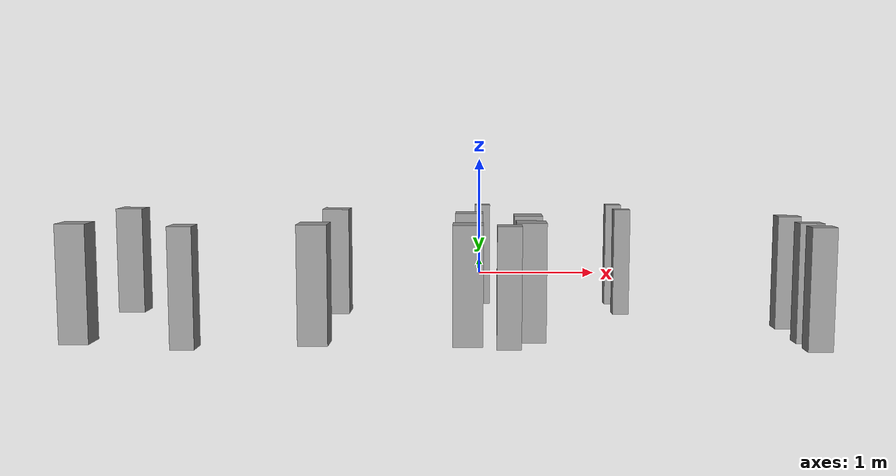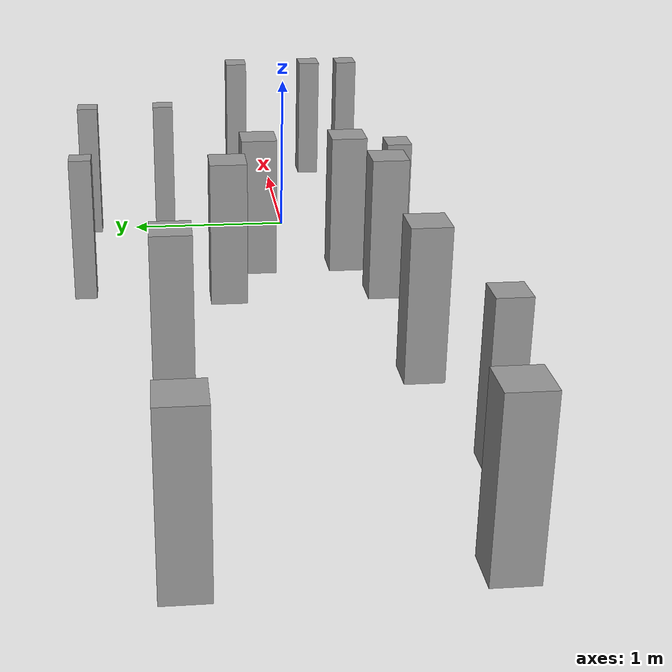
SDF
<?xml version='1.0'?>
<sdf version='1.7'>
  <model name='linha_girador'>
    <link name='link_0'>
      <inertial>
        <mass>1</mass>
        <inertia>
          <ixx>0.166667</ixx>
          <ixy>0</ixy>
          <ixz>0</ixz>
          <iyy>0.166667</iyy>
          <iyz>0</iyz>
          <izz>0.166667</izz>
        </inertia>
        <pose>0 0 0 0 -0 0</pose>
      </inertial>
      <pose>-3.34246 -0.710625 0 0 -0 0</pose>
      <gravity>1</gravity>
      <self_collide>0</self_collide>
      <kinematic>0</kinematic>
      <enable_wind>0</enable_wind>
      <visual name='visual'>
        <pose>0 0 0 0 -0 0</pose>
        <geometry>
          <box>
            <size>0.25 0.25 1</size>
          </box>
        </geometry>
        <material>
          <lighting>1</lighting>
          <script>
            <uri>file://media/materials/scripts/gazebo.material</uri>
            <name>Gazebo/Grey</name>
          </script>
          <shader type='pixel'>
            <normal_map>__default__</normal_map>
          </shader>
          <ambient>0.3 0.3 0.3 1</ambient>
          <diffuse>0.7 0.7 0.7 1</diffuse>
          <specular>0.01 0.01 0.01 1</specular>
          <emissive>0 0 0 1</emissive>
        </material>
        <transparency>0</transparency>
        <cast_shadows>1</cast_shadows>
      </visual>
      <collision name='collision'>
        <laser_retro>0</laser_retro>
        <max_contacts>10</max_contacts>
        <pose>0 0 0 0 -0 0</pose>
        <geometry>
          <box>
            <size>0.25 0.25 1</size>
          </box>
        </geometry>
        <surface>
          <friction>
            <ode>
              <mu>1</mu>
              <mu2>1</mu2>
              <fdir1>0 0 0</fdir1>
              <slip1>0</slip1>
              <slip2>0</slip2>
            </ode>
            <torsional>
              <coefficient>1</coefficient>
              <patch_radius>0</patch_radius>
              <surface_radius>0</surface_radius>
              <use_patch_radius>1</use_patch_radius>
              <ode>
                <slip>0</slip>
              </ode>
            </torsional>
          </friction>
          <bounce>
            <restitution_coefficient>0</restitution_coefficient>
            <threshold>1e+06</threshold>
          </bounce>
          <contact>
            <collide_without_contact>0</collide_without_contact>
            <collide_without_contact_bitmask>1</collide_without_contact_bitmask>
            <collide_bitmask>1</collide_bitmask>
            <ode>
              <soft_cfm>0</soft_cfm>
              <soft_erp>0.2</soft_erp>
              <kp>1e+13</kp>
              <kd>1</kd>
              <max_vel>0.01</max_vel>
              <min_depth>0</min_depth>
            </ode>
            <bullet>
              <split_impulse>1</split_impulse>
              <split_impulse_penetration_threshold>-0.01</split_impulse_penetration_threshold>
              <soft_cfm>0</soft_cfm>
              <soft_erp>0.2</soft_erp>
              <kp>1e+13</kp>
              <kd>1</kd>
            </bullet>
          </contact>
        </surface>
      </collision>
    </link>
    <link name='link_0_clone_0'>
      <inertial>
        <mass>1</mass>
        <inertia>
          <ixx>0.166667</ixx>
          <ixy>0</ixy>
          <ixz>0</ixz>
          <iyy>0.166667</iyy>
          <iyz>0</iyz>
          <izz>0.166667</izz>
        </inertia>
        <pose>0 0 0 0 -0 0</pose>
      </inertial>
      <pose>-3.34246 0.789375 0 0 -0 0</pose>
      <gravity>1</gravity>
      <self_collide>0</self_collide>
      <kinematic>0</kinematic>
      <enable_wind>0</enable_wind>
      <visual name='visual'>
        <pose>0 0 0 0 -0 0</pose>
        <geometry>
          <box>
            <size>0.25 0.25 1</size>
          </box>
        </geometry>
        <material>
          <lighting>1</lighting>
          <script>
            <uri>file://media/materials/scripts/gazebo.material</uri>
            <name>Gazebo/Grey</name>
          </script>
          <shader type='pixel'>
            <normal_map>__default__</normal_map>
          </shader>
          <ambient>0.3 0.3 0.3 1</ambient>
          <diffuse>0.7 0.7 0.7 1</diffuse>
          <specular>0.01 0.01 0.01 1</specular>
          <emissive>0 0 0 1</emissive>
        </material>
        <transparency>0</transparency>
        <cast_shadows>1</cast_shadows>
      </visual>
      <collision name='collision'>
        <laser_retro>0</laser_retro>
        <max_contacts>10</max_contacts>
        <pose>0 0 0 0 -0 0</pose>
        <geometry>
          <box>
            <size>0.25 0.25 1</size>
          </box>
        </geometry>
        <surface>
          <friction>
            <ode>
              <mu>1</mu>
              <mu2>1</mu2>
              <fdir1>0 0 0</fdir1>
              <slip1>0</slip1>
              <slip2>0</slip2>
            </ode>
            <torsional>
              <coefficient>1</coefficient>
              <patch_radius>0</patch_radius>
              <surface_radius>0</surface_radius>
              <use_patch_radius>1</use_patch_radius>
              <ode>
                <slip>0</slip>
              </ode>
            </torsional>
          </friction>
          <bounce>
            <restitution_coefficient>0</restitution_coefficient>
            <threshold>1e+06</threshold>
          </bounce>
          <contact>
            <collide_without_contact>0</collide_without_contact>
            <collide_without_contact_bitmask>1</collide_without_contact_bitmask>
            <collide_bitmask>1</collide_bitmask>
            <ode>
              <soft_cfm>0</soft_cfm>
              <soft_erp>0.2</soft_erp>
              <kp>1e+13</kp>
              <kd>1</kd>
              <max_vel>0.01</max_vel>
              <min_depth>0</min_depth>
            </ode>
            <bullet>
              <split_impulse>1</split_impulse>
              <split_impulse_penetration_threshold>-0.01</split_impulse_penetration_threshold>
              <soft_cfm>0</soft_cfm>
              <soft_erp>0.2</soft_erp>
              <kp>1e+13</kp>
              <kd>1</kd>
            </bullet>
          </contact>
        </surface>
      </collision>
    </link>
    <link name='link_0_clone_0_clone'>
      <inertial>
        <mass>1</mass>
        <inertia>
          <ixx>0.166667</ixx>
          <ixy>0</ixy>
          <ixz>0</ixz>
          <iyy>0.166667</iyy>
          <iyz>0</iyz>
          <izz>0.166667</izz>
        </inertia>
        <pose>0 0 0 0 -0 0</pose>
      </inertial>
      <pose>-1.36246 0.789375 0 0 -0 0</pose>
      <gravity>1</gravity>
      <self_collide>0</self_collide>
      <kinematic>0</kinematic>
      <enable_wind>0</enable_wind>
      <visual name='visual'>
        <pose>0 0 0 0 -0 0</pose>
        <geometry>
          <box>
            <size>0.25 0.25 1</size>
          </box>
        </geometry>
        <material>
          <lighting>1</lighting>
          <script>
            <uri>file://media/materials/scripts/gazebo.material</uri>
            <name>Gazebo/Grey</name>
          </script>
          <shader type='pixel'>
            <normal_map>__default__</normal_map>
          </shader>
          <ambient>0.3 0.3 0.3 1</ambient>
          <diffuse>0.7 0.7 0.7 1</diffuse>
          <specular>0.01 0.01 0.01 1</specular>
          <emissive>0 0 0 1</emissive>
        </material>
        <transparency>0</transparency>
        <cast_shadows>1</cast_shadows>
      </visual>
      <collision name='collision'>
        <laser_retro>0</laser_retro>
        <max_contacts>10</max_contacts>
        <pose>0 0 0 0 -0 0</pose>
        <geometry>
          <box>
            <size>0.25 0.25 1</size>
          </box>
        </geometry>
        <surface>
          <friction>
            <ode>
              <mu>1</mu>
              <mu2>1</mu2>
              <fdir1>0 0 0</fdir1>
              <slip1>0</slip1>
              <slip2>0</slip2>
            </ode>
            <torsional>
              <coefficient>1</coefficient>
              <patch_radius>0</patch_radius>
              <surface_radius>0</surface_radius>
              <use_patch_radius>1</use_patch_radius>
              <ode>
                <slip>0</slip>
              </ode>
            </torsional>
          </friction>
          <bounce>
            <restitution_coefficient>0</restitution_coefficient>
            <threshold>1e+06</threshold>
          </bounce>
          <contact>
            <collide_without_contact>0</collide_without_contact>
            <collide_without_contact_bitmask>1</collide_without_contact_bitmask>
            <collide_bitmask>1</collide_bitmask>
            <ode>
              <soft_cfm>0</soft_cfm>
              <soft_erp>0.2</soft_erp>
              <kp>1e+13</kp>
              <kd>1</kd>
              <max_vel>0.01</max_vel>
              <min_depth>0</min_depth>
            </ode>
            <bullet>
              <split_impulse>1</split_impulse>
              <split_impulse_penetration_threshold>-0.01</split_impulse_penetration_threshold>
              <soft_cfm>0</soft_cfm>
              <soft_erp>0.2</soft_erp>
              <kp>1e+13</kp>
              <kd>1</kd>
            </bullet>
          </contact>
        </surface>
      </collision>
    </link>
    <link name='link_0_clone_0_clone_clone'>
      <inertial>
        <mass>1</mass>
        <inertia>
          <ixx>0.166667</ixx>
          <ixy>0</ixy>
          <ixz>0</ixz>
          <iyy>0.166667</iyy>
          <iyz>0</iyz>
          <izz>0.166667</izz>
        </inertia>
        <pose>0 0 0 0 -0 0</pose>
      </inertial>
      <pose>-1.36246 -0.710625 0 0 -0 0</pose>
      <gravity>1</gravity>
      <self_collide>0</self_collide>
      <kinematic>0</kinematic>
      <enable_wind>0</enable_wind>
      <visual name='visual'>
        <pose>0 0 0 0 -0 0</pose>
        <geometry>
          <box>
            <size>0.25 0.25 1</size>
          </box>
        </geometry>
        <material>
          <lighting>1</lighting>
          <script>
            <uri>file://media/materials/scripts/gazebo.material</uri>
            <name>Gazebo/Grey</name>
          </script>
          <shader type='pixel'>
            <normal_map>__default__</normal_map>
          </shader>
          <ambient>0.3 0.3 0.3 1</ambient>
          <diffuse>0.7 0.7 0.7 1</diffuse>
          <specular>0.01 0.01 0.01 1</specular>
          <emissive>0 0 0 1</emissive>
        </material>
        <transparency>0</transparency>
        <cast_shadows>1</cast_shadows>
      </visual>
      <collision name='collision'>
        <laser_retro>0</laser_retro>
        <max_contacts>10</max_contacts>
        <pose>0 0 0 0 -0 0</pose>
        <geometry>
          <box>
            <size>0.25 0.25 1</size>
          </box>
        </geometry>
        <surface>
          <friction>
            <ode>
              <mu>1</mu>
              <mu2>1</mu2>
              <fdir1>0 0 0</fdir1>
              <slip1>0</slip1>
              <slip2>0</slip2>
            </ode>
            <torsional>
              <coefficient>1</coefficient>
              <patch_radius>0</patch_radius>
              <surface_radius>0</surface_radius>
              <use_patch_radius>1</use_patch_radius>
              <ode>
                <slip>0</slip>
              </ode>
            </torsional>
          </friction>
          <bounce>
            <restitution_coefficient>0</restitution_coefficient>
            <threshold>1e+06</threshold>
          </bounce>
          <contact>
            <collide_without_contact>0</collide_without_contact>
            <collide_without_contact_bitmask>1</collide_without_contact_bitmask>
            <collide_bitmask>1</collide_bitmask>
            <ode>
              <soft_cfm>0</soft_cfm>
              <soft_erp>0.2</soft_erp>
              <kp>1e+13</kp>
              <kd>1</kd>
              <max_vel>0.01</max_vel>
              <min_depth>0</min_depth>
            </ode>
            <bullet>
              <split_impulse>1</split_impulse>
              <split_impulse_penetration_threshold>-0.01</split_impulse_penetration_threshold>
              <soft_cfm>0</soft_cfm>
              <soft_erp>0.2</soft_erp>
              <kp>1e+13</kp>
              <kd>1</kd>
            </bullet>
          </contact>
        </surface>
      </collision>
    </link>
    <link name='link_0_clone_0_clone_clone_0'>
      <inertial>
        <mass>1</mass>
        <inertia>
          <ixx>0.166667</ixx>
          <ixy>0</ixy>
          <ixz>0</ixz>
          <iyy>0.166667</iyy>
          <iyz>0</iyz>
          <izz>0.166667</izz>
        </inertia>
        <pose>0 0 0 0 -0 0</pose>
      </inertial>
      <pose>-2.39246 -0.910625 0 0 -0 0</pose>
      <gravity>1</gravity>
      <self_collide>0</self_collide>
      <kinematic>0</kinematic>
      <enable_wind>0</enable_wind>
      <visual name='visual'>
        <pose>0 0 0 0 -0 0</pose>
        <geometry>
          <box>
            <size>0.2 0.2 1</size>
          </box>
        </geometry>
        <material>
          <lighting>1</lighting>
          <script>
            <uri>file://media/materials/scripts/gazebo.material</uri>
            <name>Gazebo/Grey</name>
          </script>
          <shader type='pixel'>
            <normal_map>__default__</normal_map>
          </shader>
          <ambient>0.3 0.3 0.3 1</ambient>
          <diffuse>0.7 0.7 0.7 1</diffuse>
          <specular>0.01 0.01 0.01 1</specular>
          <emissive>0 0 0 1</emissive>
        </material>
        <transparency>0</transparency>
        <cast_shadows>1</cast_shadows>
      </visual>
      <collision name='collision'>
        <laser_retro>0</laser_retro>
        <max_contacts>10</max_contacts>
        <pose>0 0 0 0 -0 0</pose>
        <geometry>
          <box>
            <size>0.2 0.2 1</size>
          </box>
        </geometry>
        <surface>
          <friction>
            <ode>
              <mu>1</mu>
              <mu2>1</mu2>
              <fdir1>0 0 0</fdir1>
              <slip1>0</slip1>
              <slip2>0</slip2>
            </ode>
            <torsional>
              <coefficient>1</coefficient>
              <patch_radius>0</patch_radius>
              <surface_radius>0</surface_radius>
              <use_patch_radius>1</use_patch_radius>
              <ode>
                <slip>0</slip>
              </ode>
            </torsional>
          </friction>
          <bounce>
            <restitution_coefficient>0</restitution_coefficient>
            <threshold>1e+06</threshold>
          </bounce>
          <contact>
            <collide_without_contact>0</collide_without_contact>
            <collide_without_contact_bitmask>1</collide_without_contact_bitmask>
            <collide_bitmask>1</collide_bitmask>
            <ode>
              <soft_cfm>0</soft_cfm>
              <soft_erp>0.2</soft_erp>
              <kp>1e+13</kp>
              <kd>1</kd>
              <max_vel>0.01</max_vel>
              <min_depth>0</min_depth>
            </ode>
            <bullet>
              <split_impulse>1</split_impulse>
              <split_impulse_penetration_threshold>-0.01</split_impulse_penetration_threshold>
              <soft_cfm>0</soft_cfm>
              <soft_erp>0.2</soft_erp>
              <kp>1e+13</kp>
              <kd>1</kd>
            </bullet>
          </contact>
        </surface>
      </collision>
    </link>
    <link name='link_0_clone_0_clone_clone_clone'>
      <inertial>
        <mass>1</mass>
        <inertia>
          <ixx>0.166667</ixx>
          <ixy>0</ixy>
          <ixz>0</ixz>
          <iyy>0.166667</iyy>
          <iyz>0</iyz>
          <izz>0.166667</izz>
        </inertia>
        <pose>0 0 0 0 -0 0</pose>
      </inertial>
      <pose>-0.092461 -0.710625 0 0 -0 0</pose>
      <gravity>1</gravity>
      <self_collide>0</self_collide>
      <kinematic>0</kinematic>
      <enable_wind>0</enable_wind>
      <visual name='visual'>
        <pose>0 0 0 0 -0 0</pose>
        <geometry>
          <box>
            <size>0.25 0.25 1</size>
          </box>
        </geometry>
        <material>
          <lighting>1</lighting>
          <script>
            <uri>file://media/materials/scripts/gazebo.material</uri>
            <name>Gazebo/Grey</name>
          </script>
          <shader type='pixel'>
            <normal_map>__default__</normal_map>
          </shader>
          <ambient>0.3 0.3 0.3 1</ambient>
          <diffuse>0.7 0.7 0.7 1</diffuse>
          <specular>0.01 0.01 0.01 1</specular>
          <emissive>0 0 0 1</emissive>
        </material>
        <transparency>0</transparency>
        <cast_shadows>1</cast_shadows>
      </visual>
      <collision name='collision'>
        <laser_retro>0</laser_retro>
        <max_contacts>10</max_contacts>
        <pose>0 0 0 0 -0 0</pose>
        <geometry>
          <box>
            <size>0.25 0.25 1</size>
          </box>
        </geometry>
        <surface>
          <friction>
            <ode>
              <mu>1</mu>
              <mu2>1</mu2>
              <fdir1>0 0 0</fdir1>
              <slip1>0</slip1>
              <slip2>0</slip2>
            </ode>
            <torsional>
              <coefficient>1</coefficient>
              <patch_radius>0</patch_radius>
              <surface_radius>0</surface_radius>
              <use_patch_radius>1</use_patch_radius>
              <ode>
                <slip>0</slip>
              </ode>
            </torsional>
          </friction>
          <bounce>
            <restitution_coefficient>0</restitution_coefficient>
            <threshold>1e+06</threshold>
          </bounce>
          <contact>
            <collide_without_contact>0</collide_without_contact>
            <collide_without_contact_bitmask>1</collide_without_contact_bitmask>
            <collide_bitmask>1</collide_bitmask>
            <ode>
              <soft_cfm>0</soft_cfm>
              <soft_erp>0.2</soft_erp>
              <kp>1e+13</kp>
              <kd>1</kd>
              <max_vel>0.01</max_vel>
              <min_depth>0</min_depth>
            </ode>
            <bullet>
              <split_impulse>1</split_impulse>
              <split_impulse_penetration_threshold>-0.01</split_impulse_penetration_threshold>
              <soft_cfm>0</soft_cfm>
              <soft_erp>0.2</soft_erp>
              <kp>1e+13</kp>
              <kd>1</kd>
            </bullet>
          </contact>
        </surface>
      </collision>
    </link>
    <link name='link_0_clone_0_clone_clone_clone_clone'>
      <inertial>
        <mass>1</mass>
        <inertia>
          <ixx>0.166667</ixx>
          <ixy>0</ixy>
          <ixz>0</ixz>
          <iyy>0.166667</iyy>
          <iyz>0</iyz>
          <izz>0.166667</izz>
        </inertia>
        <pose>0 0 0 0 -0 0</pose>
      </inertial>
      <pose>-0.092461 0.379375 0 0 -0 0</pose>
      <gravity>1</gravity>
      <self_collide>0</self_collide>
      <kinematic>0</kinematic>
      <enable_wind>0</enable_wind>
      <visual name='visual'>
        <pose>0 0 0 0 -0 0</pose>
        <geometry>
          <box>
            <size>0.25 0.25 1</size>
          </box>
        </geometry>
        <material>
          <lighting>1</lighting>
          <script>
            <uri>file://media/materials/scripts/gazebo.material</uri>
            <name>Gazebo/Grey</name>
          </script>
          <shader type='pixel'>
            <normal_map>__default__</normal_map>
          </shader>
          <ambient>0.3 0.3 0.3 1</ambient>
          <diffuse>0.7 0.7 0.7 1</diffuse>
          <specular>0.01 0.01 0.01 1</specular>
          <emissive>0 0 0 1</emissive>
        </material>
        <transparency>0</transparency>
        <cast_shadows>1</cast_shadows>
      </visual>
      <collision name='collision'>
        <laser_retro>0</laser_retro>
        <max_contacts>10</max_contacts>
        <pose>0 0 0 0 -0 0</pose>
        <geometry>
          <box>
            <size>0.25 0.25 1</size>
          </box>
        </geometry>
        <surface>
          <friction>
            <ode>
              <mu>1</mu>
              <mu2>1</mu2>
              <fdir1>0 0 0</fdir1>
              <slip1>0</slip1>
              <slip2>0</slip2>
            </ode>
            <torsional>
              <coefficient>1</coefficient>
              <patch_radius>0</patch_radius>
              <surface_radius>0</surface_radius>
              <use_patch_radius>1</use_patch_radius>
              <ode>
                <slip>0</slip>
              </ode>
            </torsional>
          </friction>
          <bounce>
            <restitution_coefficient>0</restitution_coefficient>
            <threshold>1e+06</threshold>
          </bounce>
          <contact>
            <collide_without_contact>0</collide_without_contact>
            <collide_without_contact_bitmask>1</collide_without_contact_bitmask>
            <collide_bitmask>1</collide_bitmask>
            <ode>
              <soft_cfm>0</soft_cfm>
              <soft_erp>0.2</soft_erp>
              <kp>1e+13</kp>
              <kd>1</kd>
              <max_vel>0.01</max_vel>
              <min_depth>0</min_depth>
            </ode>
            <bullet>
              <split_impulse>1</split_impulse>
              <split_impulse_penetration_threshold>-0.01</split_impulse_penetration_threshold>
              <soft_cfm>0</soft_cfm>
              <soft_erp>0.2</soft_erp>
              <kp>1e+13</kp>
              <kd>1</kd>
            </bullet>
          </contact>
        </surface>
      </collision>
    </link>
    <link name='link_0_clone_0_clone_clone_clone_clone_0'>
      <inertial>
        <mass>1</mass>
        <inertia>
          <ixx>0.166667</ixx>
          <ixy>0</ixy>
          <ixz>0</ixz>
          <iyy>0.166667</iyy>
          <iyz>0</iyz>
          <izz>0.166667</izz>
        </inertia>
        <pose>0 0 0 0 -0 0</pose>
      </inertial>
      <pose>0.432539 0.129375 0 0 -0 0</pose>
      <gravity>1</gravity>
      <self_collide>0</self_collide>
      <kinematic>0</kinematic>
      <enable_wind>0</enable_wind>
      <visual name='visual'>
        <pose>0 0 0 0 -0 0</pose>
        <geometry>
          <box>
            <size>0.25 0.25 1</size>
          </box>
        </geometry>
        <material>
          <lighting>1</lighting>
          <script>
            <uri>file://media/materials/scripts/gazebo.material</uri>
            <name>Gazebo/Grey</name>
          </script>
          <shader type='pixel'>
            <normal_map>__default__</normal_map>
          </shader>
          <ambient>0.3 0.3 0.3 1</ambient>
          <diffuse>0.7 0.7 0.7 1</diffuse>
          <specular>0.01 0.01 0.01 1</specular>
          <emissive>0 0 0 1</emissive>
        </material>
        <transparency>0</transparency>
        <cast_shadows>1</cast_shadows>
      </visual>
      <collision name='collision'>
        <laser_retro>0</laser_retro>
        <max_contacts>10</max_contacts>
        <pose>0 0 0 0 -0 0</pose>
        <geometry>
          <box>
            <size>0.25 0.25 1</size>
          </box>
        </geometry>
        <surface>
          <friction>
            <ode>
              <mu>1</mu>
              <mu2>1</mu2>
              <fdir1>0 0 0</fdir1>
              <slip1>0</slip1>
              <slip2>0</slip2>
            </ode>
            <torsional>
              <coefficient>1</coefficient>
              <patch_radius>0</patch_radius>
              <surface_radius>0</surface_radius>
              <use_patch_radius>1</use_patch_radius>
              <ode>
                <slip>0</slip>
              </ode>
            </torsional>
          </friction>
          <bounce>
            <restitution_coefficient>0</restitution_coefficient>
            <threshold>1e+06</threshold>
          </bounce>
          <contact>
            <collide_without_contact>0</collide_without_contact>
            <collide_without_contact_bitmask>1</collide_without_contact_bitmask>
            <collide_bitmask>1</collide_bitmask>
            <ode>
              <soft_cfm>0</soft_cfm>
              <soft_erp>0.2</soft_erp>
              <kp>1e+13</kp>
              <kd>1</kd>
              <max_vel>0.01</max_vel>
              <min_depth>0</min_depth>
            </ode>
            <bullet>
              <split_impulse>1</split_impulse>
              <split_impulse_penetration_threshold>-0.01</split_impulse_penetration_threshold>
              <soft_cfm>0</soft_cfm>
              <soft_erp>0.2</soft_erp>
              <kp>1e+13</kp>
              <kd>1</kd>
            </bullet>
          </contact>
        </surface>
      </collision>
    </link>
    <link name='link_0_clone_0_clone_clone_clone_clone_0_clone'>
      <inertial>
        <mass>1</mass>
        <inertia>
          <ixx>0.166667</ixx>
          <ixy>0</ixy>
          <ixz>0</ixz>
          <iyy>0.166667</iyy>
          <iyz>0</iyz>
          <izz>0.166667</izz>
        </inertia>
        <pose>0 0 0 0 -0 0</pose>
      </inertial>
      <pose>0.432542 -0.510625 0 0 -0 0</pose>
      <gravity>1</gravity>
      <self_collide>0</self_collide>
      <kinematic>0</kinematic>
      <enable_wind>0</enable_wind>
      <visual name='visual'>
        <pose>0 0 0 0 -0 0</pose>
        <geometry>
          <box>
            <size>0.25 0.25 1</size>
          </box>
        </geometry>
        <material>
          <lighting>1</lighting>
          <script>
            <uri>file://media/materials/scripts/gazebo.material</uri>
            <name>Gazebo/Grey</name>
          </script>
          <shader type='pixel'>
            <normal_map>__default__</normal_map>
          </shader>
          <ambient>0.3 0.3 0.3 1</ambient>
          <diffuse>0.7 0.7 0.7 1</diffuse>
          <specular>0.01 0.01 0.01 1</specular>
          <emissive>0 0 0 1</emissive>
        </material>
        <transparency>0</transparency>
        <cast_shadows>1</cast_shadows>
      </visual>
      <collision name='collision'>
        <laser_retro>0</laser_retro>
        <max_contacts>10</max_contacts>
        <pose>0 0 0 0 -0 0</pose>
        <geometry>
          <box>
            <size>0.25 0.25 1</size>
          </box>
        </geometry>
        <surface>
          <friction>
            <ode>
              <mu>1</mu>
              <mu2>1</mu2>
              <fdir1>0 0 0</fdir1>
              <slip1>0</slip1>
              <slip2>0</slip2>
            </ode>
            <torsional>
              <coefficient>1</coefficient>
              <patch_radius>0</patch_radius>
              <surface_radius>0</surface_radius>
              <use_patch_radius>1</use_patch_radius>
              <ode>
                <slip>0</slip>
              </ode>
            </torsional>
          </friction>
          <bounce>
            <restitution_coefficient>0</restitution_coefficient>
            <threshold>1e+06</threshold>
          </bounce>
          <contact>
            <collide_without_contact>0</collide_without_contact>
            <collide_without_contact_bitmask>1</collide_without_contact_bitmask>
            <collide_bitmask>1</collide_bitmask>
            <ode>
              <soft_cfm>0</soft_cfm>
              <soft_erp>0.2</soft_erp>
              <kp>1e+13</kp>
              <kd>1</kd>
              <max_vel>0.01</max_vel>
              <min_depth>0</min_depth>
            </ode>
            <bullet>
              <split_impulse>1</split_impulse>
              <split_impulse_penetration_threshold>-0.01</split_impulse_penetration_threshold>
              <soft_cfm>0</soft_cfm>
              <soft_erp>0.2</soft_erp>
              <kp>1e+13</kp>
              <kd>1</kd>
            </bullet>
          </contact>
        </surface>
      </collision>
    </link>
    <link name='link_0_clone_0_clone_clone_clone_clone_0_clone_0'>
      <inertial>
        <mass>1</mass>
        <inertia>
          <ixx>0.166667</ixx>
          <ixy>0</ixy>
          <ixz>0</ixz>
          <iyy>0.166667</iyy>
          <iyz>0</iyz>
          <izz>0.166667</izz>
        </inertia>
        <pose>0 0 0 0 -0 0</pose>
      </inertial>
      <pose>0.242542 -0.835625 0 0 -0 0</pose>
      <gravity>1</gravity>
      <self_collide>0</self_collide>
      <kinematic>0</kinematic>
      <enable_wind>0</enable_wind>
      <visual name='visual'>
        <pose>0 0 0 0 -0 0</pose>
        <geometry>
          <box>
            <size>0.2 0.17 1</size>
          </box>
        </geometry>
        <material>
          <lighting>1</lighting>
          <script>
            <uri>file://media/materials/scripts/gazebo.material</uri>
            <name>Gazebo/Grey</name>
          </script>
          <shader type='pixel'>
            <normal_map>__default__</normal_map>
          </shader>
          <ambient>0.3 0.3 0.3 1</ambient>
          <diffuse>0.7 0.7 0.7 1</diffuse>
          <specular>0.01 0.01 0.01 1</specular>
          <emissive>0 0 0 1</emissive>
        </material>
        <transparency>0</transparency>
        <cast_shadows>1</cast_shadows>
      </visual>
      <collision name='collision'>
        <laser_retro>0</laser_retro>
        <max_contacts>10</max_contacts>
        <pose>0 0 0 0 -0 0</pose>
        <geometry>
          <box>
            <size>0.2 0.17 1</size>
          </box>
        </geometry>
        <surface>
          <friction>
            <ode>
              <mu>1</mu>
              <mu2>1</mu2>
              <fdir1>0 0 0</fdir1>
              <slip1>0</slip1>
              <slip2>0</slip2>
            </ode>
            <torsional>
              <coefficient>1</coefficient>
              <patch_radius>0</patch_radius>
              <surface_radius>0</surface_radius>
              <use_patch_radius>1</use_patch_radius>
              <ode>
                <slip>0</slip>
              </ode>
            </torsional>
          </friction>
          <bounce>
            <restitution_coefficient>0</restitution_coefficient>
            <threshold>1e+06</threshold>
          </bounce>
          <contact>
            <collide_without_contact>0</collide_without_contact>
            <collide_without_contact_bitmask>1</collide_without_contact_bitmask>
            <collide_bitmask>1</collide_bitmask>
            <ode>
              <soft_cfm>0</soft_cfm>
              <soft_erp>0.2</soft_erp>
              <kp>1e+13</kp>
              <kd>1</kd>
              <max_vel>0.01</max_vel>
              <min_depth>0</min_depth>
            </ode>
            <bullet>
              <split_impulse>1</split_impulse>
              <split_impulse_penetration_threshold>-0.01</split_impulse_penetration_threshold>
              <soft_cfm>0</soft_cfm>
              <soft_erp>0.2</soft_erp>
              <kp>1e+13</kp>
              <kd>1</kd>
            </bullet>
          </contact>
        </surface>
      </collision>
    </link>
    <link name='link_0_clone_0_clone_clone_clone_clone_0_clone_0_clone'>
      <inertial>
        <mass>1</mass>
        <inertia>
          <ixx>0.166667</ixx>
          <ixy>0</ixy>
          <ixz>0</ixz>
          <iyy>0.166667</iyy>
          <iyz>0</iyz>
          <izz>0.166667</izz>
        </inertia>
        <pose>0 0 0 0 -0 0</pose>
      </inertial>
      <pose>2.72254 0.129375 0 0 -0 0</pose>
      <gravity>1</gravity>
      <self_collide>0</self_collide>
      <kinematic>0</kinematic>
      <enable_wind>0</enable_wind>
      <visual name='visual'>
        <pose>0 0 0 0 -0 0</pose>
        <geometry>
          <box>
            <size>0.2 0.17 1</size>
          </box>
        </geometry>
        <material>
          <lighting>1</lighting>
          <script>
            <uri>file://media/materials/scripts/gazebo.material</uri>
            <name>Gazebo/Grey</name>
          </script>
          <shader type='pixel'>
            <normal_map>__default__</normal_map>
          </shader>
          <ambient>0.3 0.3 0.3 1</ambient>
          <diffuse>0.7 0.7 0.7 1</diffuse>
          <specular>0.01 0.01 0.01 1</specular>
          <emissive>0 0 0 1</emissive>
        </material>
        <transparency>0</transparency>
        <cast_shadows>1</cast_shadows>
      </visual>
      <collision name='collision'>
        <laser_retro>0</laser_retro>
        <max_contacts>10</max_contacts>
        <pose>0 0 0 0 -0 0</pose>
        <geometry>
          <box>
            <size>0.2 0.17 1</size>
          </box>
        </geometry>
        <surface>
          <friction>
            <ode>
              <mu>1</mu>
              <mu2>1</mu2>
              <fdir1>0 0 0</fdir1>
              <slip1>0</slip1>
              <slip2>0</slip2>
            </ode>
            <torsional>
              <coefficient>1</coefficient>
              <patch_radius>0</patch_radius>
              <surface_radius>0</surface_radius>
              <use_patch_radius>1</use_patch_radius>
              <ode>
                <slip>0</slip>
              </ode>
            </torsional>
          </friction>
          <bounce>
            <restitution_coefficient>0</restitution_coefficient>
            <threshold>1e+06</threshold>
          </bounce>
          <contact>
            <collide_without_contact>0</collide_without_contact>
            <collide_without_contact_bitmask>1</collide_without_contact_bitmask>
            <collide_bitmask>1</collide_bitmask>
            <ode>
              <soft_cfm>0</soft_cfm>
              <soft_erp>0.2</soft_erp>
              <kp>1e+13</kp>
              <kd>1</kd>
              <max_vel>0.01</max_vel>
              <min_depth>0</min_depth>
            </ode>
            <bullet>
              <split_impulse>1</split_impulse>
              <split_impulse_penetration_threshold>-0.01</split_impulse_penetration_threshold>
              <soft_cfm>0</soft_cfm>
              <soft_erp>0.2</soft_erp>
              <kp>1e+13</kp>
              <kd>1</kd>
            </bullet>
          </contact>
        </surface>
      </collision>
    </link>
    <link name='link_0_clone_0_clone_clone_clone_clone_0_clone_1'>
      <inertial>
        <mass>1</mass>
        <inertia>
          <ixx>0.166667</ixx>
          <ixy>0</ixy>
          <ixz>0</ixz>
          <iyy>0.166667</iyy>
          <iyz>0</iyz>
          <izz>0.166667</izz>
        </inertia>
        <pose>0 0 0 0 -0 0</pose>
      </inertial>
      <pose>1.34754 0.789375 0 0 -0 0</pose>
      <gravity>1</gravity>
      <self_collide>0</self_collide>
      <kinematic>0</kinematic>
      <enable_wind>0</enable_wind>
      <visual name='visual'>
        <pose>0 0 0 0 -0 0</pose>
        <geometry>
          <box>
            <size>0.15 0.15 1</size>
          </box>
        </geometry>
        <material>
          <lighting>1</lighting>
          <script>
            <uri>file://media/materials/scripts/gazebo.material</uri>
            <name>Gazebo/Grey</name>
          </script>
          <shader type='pixel'>
            <normal_map>__default__</normal_map>
          </shader>
          <ambient>0.3 0.3 0.3 1</ambient>
          <diffuse>0.7 0.7 0.7 1</diffuse>
          <specular>0.01 0.01 0.01 1</specular>
          <emissive>0 0 0 1</emissive>
        </material>
        <transparency>0</transparency>
        <cast_shadows>1</cast_shadows>
      </visual>
      <collision name='collision'>
        <laser_retro>0</laser_retro>
        <max_contacts>10</max_contacts>
        <pose>0 0 0 0 -0 0</pose>
        <geometry>
          <box>
            <size>0.15 0.15 1</size>
          </box>
        </geometry>
        <surface>
          <friction>
            <ode>
              <mu>1</mu>
              <mu2>1</mu2>
              <fdir1>0 0 0</fdir1>
              <slip1>0</slip1>
              <slip2>0</slip2>
            </ode>
            <torsional>
              <coefficient>1</coefficient>
              <patch_radius>0</patch_radius>
              <surface_radius>0</surface_radius>
              <use_patch_radius>1</use_patch_radius>
              <ode>
                <slip>0</slip>
              </ode>
            </torsional>
          </friction>
          <bounce>
            <restitution_coefficient>0</restitution_coefficient>
            <threshold>1e+06</threshold>
          </bounce>
          <contact>
            <collide_without_contact>0</collide_without_contact>
            <collide_without_contact_bitmask>1</collide_without_contact_bitmask>
            <collide_bitmask>1</collide_bitmask>
            <ode>
              <soft_cfm>0</soft_cfm>
              <soft_erp>0.2</soft_erp>
              <kp>1e+13</kp>
              <kd>1</kd>
              <max_vel>0.01</max_vel>
              <min_depth>0</min_depth>
            </ode>
            <bullet>
              <split_impulse>1</split_impulse>
              <split_impulse_penetration_threshold>-0.01</split_impulse_penetration_threshold>
              <soft_cfm>0</soft_cfm>
              <soft_erp>0.2</soft_erp>
              <kp>1e+13</kp>
              <kd>1</kd>
            </bullet>
          </contact>
        </surface>
      </collision>
    </link>
    <link name='link_0_clone_0_clone_clone_clone_clone_0_clone_1_clone'>
      <inertial>
        <mass>1</mass>
        <inertia>
          <ixx>0.166667</ixx>
          <ixy>0</ixy>
          <ixz>0</ixz>
          <iyy>0.166667</iyy>
          <iyz>0</iyz>
          <izz>0.166667</izz>
        </inertia>
        <pose>0 0 0 0 -0 0</pose>
      </inertial>
      <pose>1.33378 1.36437 0 0 -0 0</pose>
      <gravity>1</gravity>
      <self_collide>0</self_collide>
      <kinematic>0</kinematic>
      <enable_wind>0</enable_wind>
      <visual name='visual'>
        <pose>0 0 0 0 -0 0</pose>
        <geometry>
          <box>
            <size>0.15 0.15 1</size>
          </box>
        </geometry>
        <material>
          <lighting>1</lighting>
          <script>
            <uri>file://media/materials/scripts/gazebo.material</uri>
            <name>Gazebo/Grey</name>
          </script>
          <shader type='pixel'>
            <normal_map>__default__</normal_map>
          </shader>
          <ambient>0.3 0.3 0.3 1</ambient>
          <diffuse>0.7 0.7 0.7 1</diffuse>
          <specular>0.01 0.01 0.01 1</specular>
          <emissive>0 0 0 1</emissive>
        </material>
        <transparency>0</transparency>
        <cast_shadows>1</cast_shadows>
      </visual>
      <collision name='collision'>
        <laser_retro>0</laser_retro>
        <max_contacts>10</max_contacts>
        <pose>0 0 0 0 -0 0</pose>
        <geometry>
          <box>
            <size>0.15 0.15 1</size>
          </box>
        </geometry>
        <surface>
          <friction>
            <ode>
              <mu>1</mu>
              <mu2>1</mu2>
              <fdir1>0 0 0</fdir1>
              <slip1>0</slip1>
              <slip2>0</slip2>
            </ode>
            <torsional>
              <coefficient>1</coefficient>
              <patch_radius>0</patch_radius>
              <surface_radius>0</surface_radius>
              <use_patch_radius>1</use_patch_radius>
              <ode>
                <slip>0</slip>
              </ode>
            </torsional>
          </friction>
          <bounce>
            <restitution_coefficient>0</restitution_coefficient>
            <threshold>1e+06</threshold>
          </bounce>
          <contact>
            <collide_without_contact>0</collide_without_contact>
            <collide_without_contact_bitmask>1</collide_without_contact_bitmask>
            <collide_bitmask>1</collide_bitmask>
            <ode>
              <soft_cfm>0</soft_cfm>
              <soft_erp>0.2</soft_erp>
              <kp>1e+13</kp>
              <kd>1</kd>
              <max_vel>0.01</max_vel>
              <min_depth>0</min_depth>
            </ode>
            <bullet>
              <split_impulse>1</split_impulse>
              <split_impulse_penetration_threshold>-0.01</split_impulse_penetration_threshold>
              <soft_cfm>0</soft_cfm>
              <soft_erp>0.2</soft_erp>
              <kp>1e+13</kp>
              <kd>1</kd>
            </bullet>
          </contact>
        </surface>
      </collision>
    </link>
    <link name='link_0_clone_0_clone_clone_clone_clone_0_clone_1_clone_clone'>
      <inertial>
        <mass>1</mass>
        <inertia>
          <ixx>0.166667</ixx>
          <ixy>0</ixy>
          <ixz>0</ixz>
          <iyy>0.166667</iyy>
          <iyz>0</iyz>
          <izz>0.166667</izz>
        </inertia>
        <pose>0 0 0 0 -0 0</pose>
      </inertial>
      <pose>0.030629 1.36437 0 0 -0 0</pose>
      <gravity>1</gravity>
      <self_collide>0</self_collide>
      <kinematic>0</kinematic>
      <enable_wind>0</enable_wind>
      <visual name='visual'>
        <pose>0 0 0 0 -0 0</pose>
        <geometry>
          <box>
            <size>0.15 0.15 1</size>
          </box>
        </geometry>
        <material>
          <lighting>1</lighting>
          <script>
            <uri>file://media/materials/scripts/gazebo.material</uri>
            <name>Gazebo/Grey</name>
          </script>
          <shader type='pixel'>
            <normal_map>__default__</normal_map>
          </shader>
          <ambient>0.3 0.3 0.3 1</ambient>
          <diffuse>0.7 0.7 0.7 1</diffuse>
          <specular>0.01 0.01 0.01 1</specular>
          <emissive>0 0 0 1</emissive>
        </material>
        <transparency>0</transparency>
        <cast_shadows>1</cast_shadows>
      </visual>
      <collision name='collision'>
        <laser_retro>0</laser_retro>
        <max_contacts>10</max_contacts>
        <pose>0 0 0 0 -0 0</pose>
        <geometry>
          <box>
            <size>0.15 0.15 1</size>
          </box>
        </geometry>
        <surface>
          <friction>
            <ode>
              <mu>1</mu>
              <mu2>1</mu2>
              <fdir1>0 0 0</fdir1>
              <slip1>0</slip1>
              <slip2>0</slip2>
            </ode>
            <torsional>
              <coefficient>1</coefficient>
              <patch_radius>0</patch_radius>
              <surface_radius>0</surface_radius>
              <use_patch_radius>1</use_patch_radius>
              <ode>
                <slip>0</slip>
              </ode>
            </torsional>
          </friction>
          <bounce>
            <restitution_coefficient>0</restitution_coefficient>
            <threshold>1e+06</threshold>
          </bounce>
          <contact>
            <collide_without_contact>0</collide_without_contact>
            <collide_without_contact_bitmask>1</collide_without_contact_bitmask>
            <collide_bitmask>1</collide_bitmask>
            <ode>
              <soft_cfm>0</soft_cfm>
              <soft_erp>0.2</soft_erp>
              <kp>1e+13</kp>
              <kd>1</kd>
              <max_vel>0.01</max_vel>
              <min_depth>0</min_depth>
            </ode>
            <bullet>
              <split_impulse>1</split_impulse>
              <split_impulse_penetration_threshold>-0.01</split_impulse_penetration_threshold>
              <soft_cfm>0</soft_cfm>
              <soft_erp>0.2</soft_erp>
              <kp>1e+13</kp>
              <kd>1</kd>
            </bullet>
          </contact>
        </surface>
      </collision>
    </link>
    <link name='link_0_clone_0_clone_clone_clone_clone_1'>
      <inertial>
        <mass>1</mass>
        <inertia>
          <ixx>0.166667</ixx>
          <ixy>0</ixy>
          <ixz>0</ixz>
          <iyy>0.166667</iyy>
          <iyz>0</iyz>
          <izz>0.166667</izz>
        </inertia>
        <pose>0 0 0 0 -0 0</pose>
      </inertial>
      <pose>2.72254 -0.835625 0 0 -0 0</pose>
      <gravity>1</gravity>
      <self_collide>0</self_collide>
      <kinematic>0</kinematic>
      <enable_wind>0</enable_wind>
      <visual name='visual'>
        <pose>0 0 0 0 -0 0</pose>
        <geometry>
          <box>
            <size>0.2 0.17 1</size>
          </box>
        </geometry>
        <material>
          <lighting>1</lighting>
          <script>
            <uri>file://media/materials/scripts/gazebo.material</uri>
            <name>Gazebo/Grey</name>
          </script>
          <shader type='pixel'>
            <normal_map>__default__</normal_map>
          </shader>
          <ambient>0.3 0.3 0.3 1</ambient>
          <diffuse>0.7 0.7 0.7 1</diffuse>
          <specular>0.01 0.01 0.01 1</specular>
          <emissive>0 0 0 1</emissive>
        </material>
        <transparency>0</transparency>
        <cast_shadows>1</cast_shadows>
      </visual>
      <collision name='collision'>
        <laser_retro>0</laser_retro>
        <max_contacts>10</max_contacts>
        <pose>0 0 0 0 -0 0</pose>
        <geometry>
          <box>
            <size>0.2 0.17 1</size>
          </box>
        </geometry>
        <surface>
          <friction>
            <ode>
              <mu>1</mu>
              <mu2>1</mu2>
              <fdir1>0 0 0</fdir1>
              <slip1>0</slip1>
              <slip2>0</slip2>
            </ode>
            <torsional>
              <coefficient>1</coefficient>
              <patch_radius>0</patch_radius>
              <surface_radius>0</surface_radius>
              <use_patch_radius>1</use_patch_radius>
              <ode>
                <slip>0</slip>
              </ode>
            </torsional>
          </friction>
          <bounce>
            <restitution_coefficient>0</restitution_coefficient>
            <threshold>1e+06</threshold>
          </bounce>
          <contact>
            <collide_without_contact>0</collide_without_contact>
            <collide_without_contact_bitmask>1</collide_without_contact_bitmask>
            <collide_bitmask>1</collide_bitmask>
            <ode>
              <soft_cfm>0</soft_cfm>
              <soft_erp>0.2</soft_erp>
              <kp>1e+13</kp>
              <kd>1</kd>
              <max_vel>0.01</max_vel>
              <min_depth>0</min_depth>
            </ode>
            <bullet>
              <split_impulse>1</split_impulse>
              <split_impulse_penetration_threshold>-0.01</split_impulse_penetration_threshold>
              <soft_cfm>0</soft_cfm>
              <soft_erp>0.2</soft_erp>
              <kp>1e+13</kp>
              <kd>1</kd>
            </bullet>
          </contact>
        </surface>
      </collision>
    </link>
    <link name='link_0_clone_0_clone_clone_clone_clone_2'>
      <inertial>
        <mass>1</mass>
        <inertia>
          <ixx>0.166667</ixx>
          <ixy>0</ixy>
          <ixz>0</ixz>
          <iyy>0.166667</iyy>
          <iyz>0</iyz>
          <izz>0.166667</izz>
        </inertia>
        <pose>0 0 0 0 -0 0</pose>
      </inertial>
      <pose>2.72254 -0.510625 0 0 -0 0</pose>
      <gravity>1</gravity>
      <self_collide>0</self_collide>
      <kinematic>0</kinematic>
      <enable_wind>0</enable_wind>
      <visual name='visual'>
        <pose>0 0 0 0 -0 0</pose>
        <geometry>
          <box>
            <size>0.2 0.17 1</size>
          </box>
        </geometry>
        <material>
          <lighting>1</lighting>
          <script>
            <uri>file://media/materials/scripts/gazebo.material</uri>
            <name>Gazebo/Grey</name>
          </script>
          <shader type='pixel'>
            <normal_map>__default__</normal_map>
          </shader>
          <ambient>0.3 0.3 0.3 1</ambient>
          <diffuse>0.7 0.7 0.7 1</diffuse>
          <specular>0.01 0.01 0.01 1</specular>
          <emissive>0 0 0 1</emissive>
        </material>
        <transparency>0</transparency>
        <cast_shadows>1</cast_shadows>
      </visual>
      <collision name='collision'>
        <laser_retro>0</laser_retro>
        <max_contacts>10</max_contacts>
        <pose>0 0 0 0 -0 0</pose>
        <geometry>
          <box>
            <size>0.2 0.17 1</size>
          </box>
        </geometry>
        <surface>
          <friction>
            <ode>
              <mu>1</mu>
              <mu2>1</mu2>
              <fdir1>0 0 0</fdir1>
              <slip1>0</slip1>
              <slip2>0</slip2>
            </ode>
            <torsional>
              <coefficient>1</coefficient>
              <patch_radius>0</patch_radius>
              <surface_radius>0</surface_radius>
              <use_patch_radius>1</use_patch_radius>
              <ode>
                <slip>0</slip>
              </ode>
            </torsional>
          </friction>
          <bounce>
            <restitution_coefficient>0</restitution_coefficient>
            <threshold>1e+06</threshold>
          </bounce>
          <contact>
            <collide_without_contact>0</collide_without_contact>
            <collide_without_contact_bitmask>1</collide_without_contact_bitmask>
            <collide_bitmask>1</collide_bitmask>
            <ode>
              <soft_cfm>0</soft_cfm>
              <soft_erp>0.2</soft_erp>
              <kp>1e+13</kp>
              <kd>1</kd>
              <max_vel>0.01</max_vel>
              <min_depth>0</min_depth>
            </ode>
            <bullet>
              <split_impulse>1</split_impulse>
              <split_impulse_penetration_threshold>-0.01</split_impulse_penetration_threshold>
              <soft_cfm>0</soft_cfm>
              <soft_erp>0.2</soft_erp>
              <kp>1e+13</kp>
              <kd>1</kd>
            </bullet>
          </contact>
        </surface>
      </collision>
    </link>
    <static>0</static>
    <allow_auto_disable>1</allow_auto_disable>
  </model>
</sdf>
